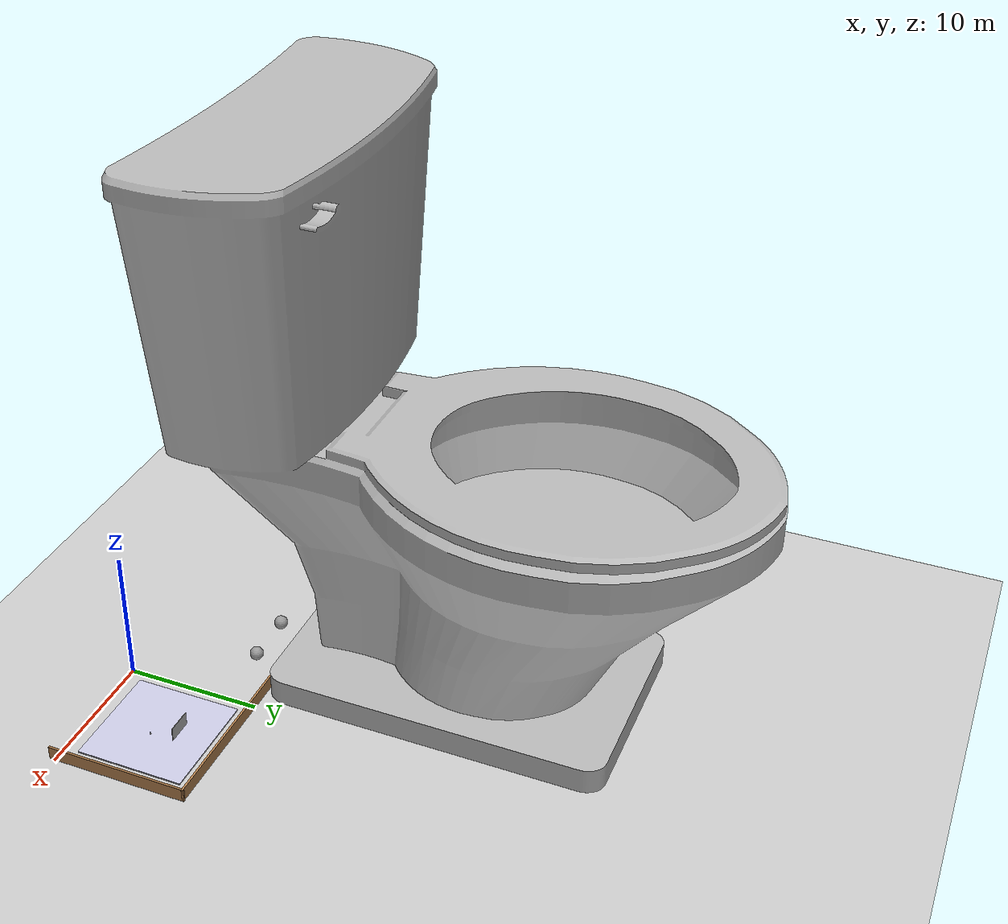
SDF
<sdf version="1.10">
 <world name="toilet_world">
  <model name="floor">
   <pose>-0.34577226638793945 5 0 0 0 0</pose>
   <static>true</static>
   <link name="floor_link">
    <collision name="floor_collision">
     <geometry><box><size>8 8 0.10000000000000001</size></box></geometry>
    </collision>
    <visual name="floor_visual">
     <geometry><box><size>8 8 0.10000000000000001</size></box></geometry>
     <material>
      <ambient>0.800000012 0.800000012 0.899999976 1</ambient>
      <diffuse>0.800000012 0.800000012 0.899999976 1</diffuse>
      <specular>0.100000001 0.100000001 0.100000001 1</specular>
     </material>
    </visual>
    <pose>5 0 0 0 0 0</pose>
    <inertial>
     <mass>1</mass>
     <inertia><ixx>1</ixx><ixy>0</ixy><ixz>0</ixz><iyy>1</iyy><iyz>0</iyz><izz>1</izz></inertia>
    </inertial>
   </link>
  </model>
  <model name="toilet_1">
   <pose>3.7157090902328491 5.0001171227398826 0 0 0 1.5700000841906609</pose>
   <model name="toilet_1">
    <static>true</static>
    <link name="link">
     <collision name="collision">
      <pose>-0.0038730000000000001 0.13400100000000001 0.58209699999999998 0 0 0</pose>
      <geometry><box><size>0.55163099999999998 1.09406 1.18218</size></box></geometry>
     </collision>
     <visual name="visual">
      <geometry>
       <mesh>
        <uri>model://toilet/meshes/toilet.dae</uri>
        <scale>1.3999999999999999 1.3999999999999999 1.3999999999999999</scale>
       </mesh>
      </geometry>
     </visual>
    </link>
   </model>
   <static>false</static>
  </model>
  <model name="bathroom_mirror">
   <pose>5 6.8990241289138794 -0.13495112955570221 1.5501099861717527 0 0</pose>
   <model name="whiteboard">
    <static>true</static>
    <link name="link">
     <collision name="collision">
      <pose>-0.010992 -0.000776 0.99821199999999999 0 0 0</pose>
      <geometry><box><size>1.9737199999999999 0.69681999999999999 2.0250699999999999</size></box></geometry>
     </collision>
     <visual name="visual">
      <geometry>
       <mesh><uri>model://whiteboard/meshes/whiteboard.obj</uri><scale>0.01 0.01 0.01</scale></mesh>
      </geometry>
     </visual>
    </link>
   </model>
   <static>false</static>
  </model>
  <model name="window_squeegee_1">
   <static>false</static>
   <link name="squeegee_body">
    <inertial>
     <mass>0.17999999999999999</mass>
     <pose>0 0 0.080000000000000002 0 0 0</pose>
     <inertia>
      <ixx>0.00089999999999999998</ixx>
      <ixy>0</ixy>
      <ixz>0</ixz>
      <iyy>0.0011999999999999999</iyy>
      <iyz>0</iyz>
      <izz>0.0015</izz>
     </inertia>
    </inertial>
    <visual name="handle_visual">
     <pose>0 0 0.10000000000000001 0 0 0</pose>
     <geometry>
      <cylinder><radius>0.014999999999999999</radius><length>0.17999999999999999</length></cylinder>
     </geometry>
     <material>
      <ambient>0.200000003 0.200000003 0.800000012 1</ambient>
      <diffuse>0.200000003 0.200000003 0.800000012 1</diffuse>
      <specular>0.300000012 0.300000012 0.300000012 1</specular>
     </material>
    </visual>
    <collision name="handle_collision">
     <pose>0 0 0.10000000000000001 0 0 0</pose>
     <geometry>
      <cylinder><radius>0.014999999999999999</radius><length>0.17999999999999999</length></cylinder>
     </geometry>
    </collision>
    <visual name="grip_visual">
     <pose>0 0 0.080000000000000002 0 0 0</pose>
     <geometry>
      <cylinder><radius>0.017000000000000001</radius><length>0.050000000000000003</length></cylinder>
     </geometry>
     <material>
      <ambient>0.100000001 0.100000001 0.100000001 1</ambient>
      <diffuse>0.100000001 0.100000001 0.100000001 1</diffuse>
      <specular>0.0500000007 0.0500000007 0.0500000007 1</specular>
     </material>
    </visual>
    <visual name="frame_visual">
     <pose>0 0 0.0050000000000000001 0 0 0</pose>
     <geometry><box><size>0.25 0.02 0.01</size></box></geometry>
     <material>
      <ambient>0.699999988 0.699999988 0.699999988 1</ambient>
      <diffuse>0.699999988 0.699999988 0.699999988 1</diffuse>
      <specular>0.5 0.5 0.5 1</specular>
     </material>
    </visual>
    <collision name="frame_collision">
     <pose>0 0 0.0050000000000000001 0 0 0</pose>
     <geometry><box><size>0.25 0.02 0.01</size></box></geometry>
    </collision>
    <visual name="rubber_blade_visual">
     <pose>0 0 -0.0030000000000000001 0 0 0</pose>
     <geometry><box><size>0.23999999999999999 0.0030000000000000001 0.0080000000000000002</size></box></geometry>
     <material>
      <ambient>0.100000001 0.100000001 0.100000001 1</ambient>
      <diffuse>0.200000003 0.200000003 0.200000003 1</diffuse>
      <specular>0.0500000007 0.0500000007 0.0500000007 1</specular>
     </material>
    </visual>
    <collision name="rubber_blade_collision">
     <pose>0 0 -0.0030000000000000001 0 0 0</pose>
     <geometry><box><size>0.23999999999999999 0.0030000000000000001 0.0080000000000000002</size></box></geometry>
     <surface>
      <friction><ode><mu>0.80000000000000004</mu><mu2>0.80000000000000004</mu2></ode></friction>
      <bounce><restitution_coefficient>0.10000000000000001</restitution_coefficient></bounce>
      <contact>
       <ode>
        <soft_cfm>0.050000000000000003</soft_cfm>
        <soft_erp>0.20000000000000001</soft_erp>
        <kp>5000</kp>
        <kd>50</kd>
       </ode>
      </contact>
     </surface>
    </collision>
    <visual name="corner_support_left">
     <pose>-0.11 0 0 0 0 0</pose>
     <geometry><box><size>0.014999999999999999 0.025000000000000001 0.014999999999999999</size></box></geometry>
     <material>
      <ambient>0.699999988 0.699999988 0.699999988 1</ambient>
      <diffuse>0.699999988 0.699999988 0.699999988 1</diffuse>
      <specular>0.5 0.5 0.5 1</specular>
     </material>
    </visual>
    <visual name="corner_support_right">
     <pose>0.11 0 0 0 0 0</pose>
     <geometry><box><size>0.014999999999999999 0.025000000000000001 0.014999999999999999</size></box></geometry>
     <material>
      <ambient>0.699999988 0.699999988 0.699999988 1</ambient>
      <diffuse>0.699999988 0.699999988 0.699999988 1</diffuse>
      <specular>0.5 0.5 0.5 1</specular>
     </material>
    </visual>
    <visual name="connection_joint">
     <pose>0 0 0.014999999999999999 0 0 0</pose>
     <geometry><box><size>0.040000000000000001 0.029999999999999999 0.02</size></box></geometry>
     <material>
      <ambient>0.600000024 0.600000024 0.600000024 1</ambient>
      <diffuse>0.600000024 0.600000024 0.600000024 1</diffuse>
      <specular>0.400000006 0.400000006 0.400000006 1</specular>
     </material>
    </visual>
    <collision name="connection_joint_collision">
     <pose>0 0 0.014999999999999999 0 0 0</pose>
     <geometry><box><size>0.040000000000000001 0.029999999999999999 0.02</size></box></geometry>
    </collision>
   </link>
   <pose>5.2650947570800772 4.6582150459289551 0.078897319734096499 1.0091377532184783e-09 0.00014694899835142748 1.5707999780642883</pose>
  </model>
  <model name="ground_plane">
   <static>true</static>
   <link name="link">
    <collision name="collision">
     <geometry><plane><normal>0 0 1</normal><size>100 100</size></plane></geometry>
     <surface><friction><ode><mu>100</mu><mu2>50</mu2></ode></friction></surface>
    </collision>
    <visual name="visual">
     <cast_shadows>false</cast_shadows>
     <geometry><plane><normal>0 0 1</normal><size>100 100</size></plane></geometry>
     <material>
      <script><uri>file://media/materials/scripts/gazebo.material</uri><name>Gazebo/Grey</name></script>
     </material>
    </visual>
    <inertial>
     <mass>1</mass>
     <inertia><ixx>1</ixx><ixy>0</ixy><ixz>0</ixz><iyy>1</iyy><iyz>0</iyz><izz>1</izz></inertia>
    </inertial>
   </link>
  </model>
  <model name="wooden_fence">
   <link name="Wall_14">
    <pose>6.4249999999999998 0 -0.77559599999999995 0 0 1.5708</pose>
    <inertial>
     <inertia><ixx>0.01</ixx><ixy>0</ixy><ixz>0</ixz><iyy>0.01</iyy><iyz>0</iyz><izz>0.01</izz></inertia>
     <mass>1</mass>
    </inertial>
    <visual name="Wall_14_Visual">
     <pose>0 0 1.25 0 0 0</pose>
     <geometry><box><size>10.5 0.14999999999999999 1.0201</size></box></geometry>
     <material>
      <script><uri>file://media/materials/scripts/gazebo.material</uri><name>Gazebo/Wood</name></script>
      <ambient>1 1 1 1</ambient>
      <shader type="pixel"/>
     </material>
     <meta><layer>0</layer></meta>
    </visual>
    <collision name="Wall_14_Collision">
     <pose>0 0 1.25 0 0 0</pose>
     <geometry><box><size>10.5 0.14999999999999999 1.0201</size></box></geometry>
     <surface>
      <friction>
       <ode><mu>1</mu><mu2>1</mu2><fdir1>0 0 0</fdir1><slip1>0</slip1><slip2>0</slip2></ode>
       <torsional>
        <coefficient>1</coefficient>
        <patch_radius>0</patch_radius>
        <surface_radius>0</surface_radius>
        <use_patch_radius>true</use_patch_radius>
        <ode><slip>0</slip></ode>
       </torsional>
      </friction>
      <bounce><restitution_coefficient>0</restitution_coefficient><threshold>1000000</threshold></bounce>
      <contact>
       <collide_without_contact>false</collide_without_contact>
       <collide_without_contact_bitmask>1</collide_without_contact_bitmask>
       <collide_bitmask>1</collide_bitmask>
       <ode>
        <soft_cfm>0</soft_cfm>
        <soft_erp>0.20000000000000001</soft_erp>
        <kp>10000000000000</kp>
        <kd>1</kd>
        <max_vel>0.01</max_vel>
        <min_depth>0</min_depth>
       </ode>
       <bullet>
        <split_impulse>true</split_impulse>
        <split_impulse_penetration_threshold>-0.01</split_impulse_penetration_threshold>
        <soft_cfm>0</soft_cfm>
        <soft_erp>0.20000000000000001</soft_erp>
        <kp>10000000000000</kp>
        <kd>1</kd>
       </bullet>
      </contact>
     </surface>
    </collision>
   </link>
   <link name="Wall_16">
    <pose>8.4376949871511897e-15 5.1750000000000114 -0.7441580000000001 0 0 3.1415899999999986</pose>
    <inertial>
     <inertia><ixx>0.01</ixx><ixy>0</ixy><ixz>0</ixz><iyy>0.01</iyy><iyz>0</iyz><izz>0.01</izz></inertia>
     <mass>1</mass>
    </inertial>
    <visual name="Wall_16_Visual">
     <pose>0 0 1.25 0 0 0</pose>
     <geometry><box><size>13 0.14999999999999999 0.97096400000000005</size></box></geometry>
     <material>
      <script><uri>file://media/materials/scripts/gazebo.material</uri><name>Gazebo/Wood</name></script>
      <ambient>1 1 1 1</ambient>
      <shader type="pixel"/>
     </material>
     <meta><layer>0</layer></meta>
    </visual>
    <collision name="Wall_16_Collision">
     <pose>0 0 1.25 0 0 0</pose>
     <geometry><box><size>13 0.14999999999999999 0.97096400000000005</size></box></geometry>
     <surface>
      <friction>
       <ode><mu>1</mu><mu2>1</mu2><fdir1>0 0 0</fdir1><slip1>0</slip1><slip2>0</slip2></ode>
       <torsional>
        <coefficient>1</coefficient>
        <patch_radius>0</patch_radius>
        <surface_radius>0</surface_radius>
        <use_patch_radius>true</use_patch_radius>
        <ode><slip>0</slip></ode>
       </torsional>
      </friction>
      <bounce><restitution_coefficient>0</restitution_coefficient><threshold>1000000</threshold></bounce>
      <contact>
       <collide_without_contact>false</collide_without_contact>
       <collide_without_contact_bitmask>1</collide_without_contact_bitmask>
       <collide_bitmask>1</collide_bitmask>
       <ode>
        <soft_cfm>0</soft_cfm>
        <soft_erp>0.20000000000000001</soft_erp>
        <kp>10000000000000</kp>
        <kd>1</kd>
        <max_vel>0.01</max_vel>
        <min_depth>0</min_depth>
       </ode>
       <bullet>
        <split_impulse>true</split_impulse>
        <split_impulse_penetration_threshold>-0.01</split_impulse_penetration_threshold>
        <soft_cfm>0</soft_cfm>
        <soft_erp>0.20000000000000001</soft_erp>
        <kp>10000000000000</kp>
        <kd>1</kd>
       </bullet>
      </contact>
     </surface>
    </collision>
   </link>
   <static>true</static>
   <pose>3.4044000000000008 4.8091599999999897 1.1102230246251565e-16 0 0 1.4432899320127035e-15</pose>
  </model>
  <model name="unit_sphere">
   <pose>-8.6767199999999995 7.58399 0.5 0 0 0</pose>
   <link name="link">
    <inertial>
     <mass>1</mass>
     <inertia>
      <ixx>0.10000000000000001</ixx>
      <ixy>0</ixy>
      <ixz>0</ixz>
      <iyy>0.10000000000000001</iyy>
      <iyz>0</iyz>
      <izz>0.10000000000000001</izz>
     </inertia>
    </inertial>
    <collision name="collision"><geometry><sphere><radius>0.5</radius></sphere></geometry></collision>
    <visual name="visual">
     <geometry><sphere><radius>0.5</radius></sphere></geometry>
     <material>
      <script><name>Gazebo/Grey</name><uri>file://media/materials/scripts/gazebo.material</uri></script>
     </material>
    </visual>
   </link>
   <static>false</static>
  </model>
  <model name="unit_sphere_0">
   <pose>-4.8006799999999998 7.6063400000000003 0.5 0 0 0</pose>
   <link name="link">
    <inertial>
     <mass>1</mass>
     <inertia>
      <ixx>0.10000000000000001</ixx>
      <ixy>0</ixy>
      <ixz>0</ixz>
      <iyy>0.10000000000000001</iyy>
      <iyz>0</iyz>
      <izz>0.10000000000000001</izz>
     </inertia>
    </inertial>
    <collision name="collision"><geometry><sphere><radius>0.5</radius></sphere></geometry></collision>
    <visual name="visual">
     <geometry><sphere><radius>0.5</radius></sphere></geometry>
     <material>
      <script><name>Gazebo/Grey</name><uri>file://media/materials/scripts/gazebo.material</uri></script>
     </material>
    </visual>
   </link>
   <static>false</static>
  </model>
 </world>
</sdf>
